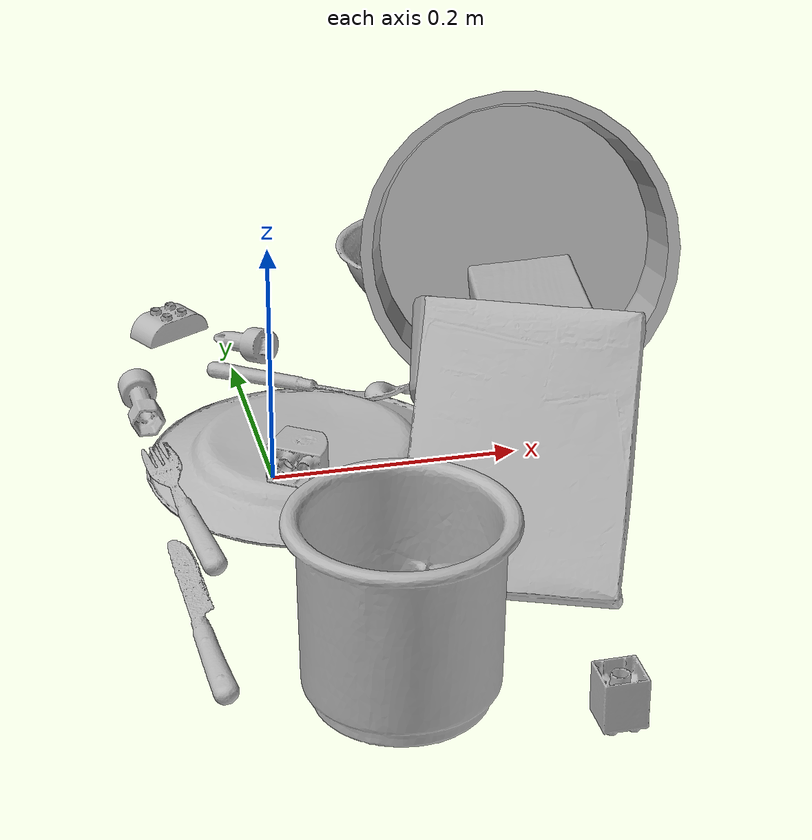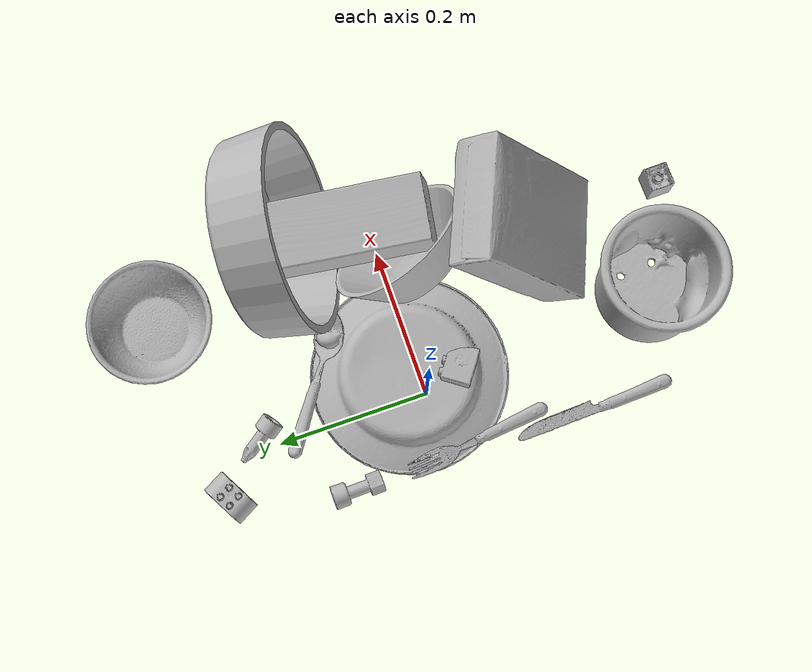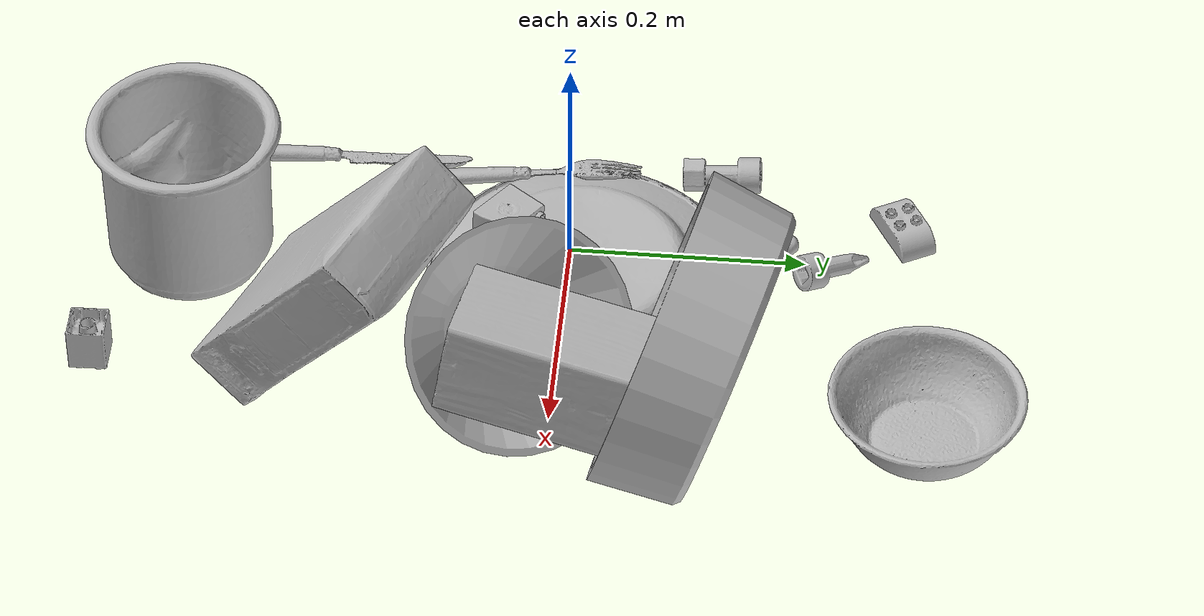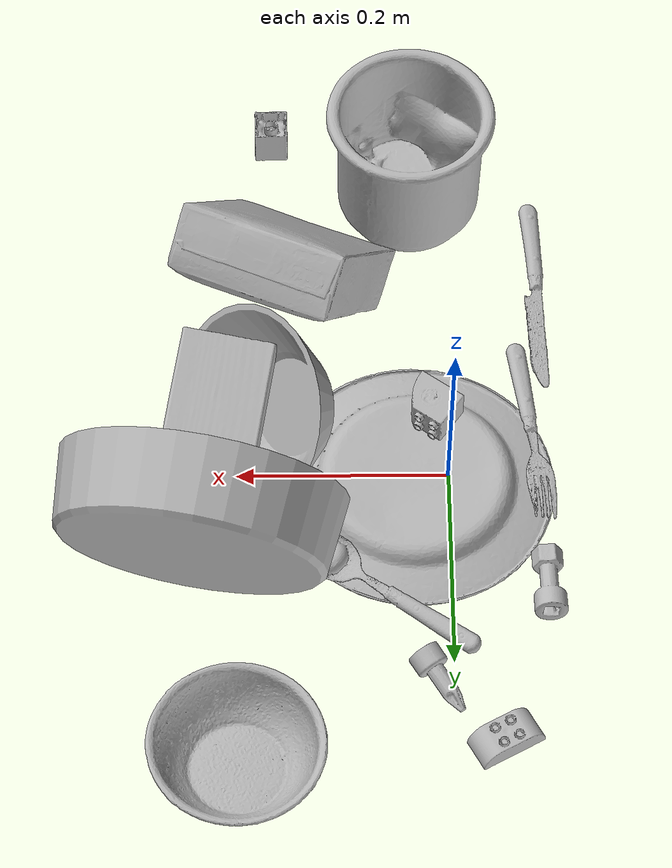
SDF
<sdf version="1.4">
  <world name="default">
    <light name="light1" type="point">
      <pose>0 0 1 0 0 0</pose>
      <diffuse>3 3 3 1</diffuse>
      <specular>3 3 3 1</specular>
    </light>
    <light name="light2" type="point">
      <pose>0 0.5 2 0 0 0</pose>
      <diffuse>1 1 1 1</diffuse>
      <specular>1 1 1 1</specular>
    </light>
    <light name="light3" type="point">
      <pose>0 0.5 2 0 0 0</pose>
      <diffuse>3 3 3 1</diffuse>
      <specular>3 3 3 1</specular>
    </light>
    <scene>
      <ambient>0.7 0.7 0.7</ambient>
    </scene>
    <model name="plate1">
      <link name="link_plate1">
        <collision name="default">
          <geometry>
            <mesh>
              <uri>model://pan_tefal/collision_meshes/collision.obj</uri>
              <scale>1.0 1.0 1.0</scale>
            </mesh>
          </geometry>
          <surface>
            <friction>
              <ode>
                <mu>0.5</mu>
                <mu2>0.5</mu2>
              </ode>
            </friction>
          <contact>
        <ode>
            <max_vel>0</max_vel>
            <min_depth>0.0001</min_depth>
            <kp>1e8</kp>
        </ode>
    </contact></surface>
        </collision>
        <visual name="default">
          <geometry>
            <mesh>
              <uri>model://pan_tefal/visual_meshes/visual.dae</uri>
              <scale>1.0 1.0 1.0</scale>
            </mesh>
          </geometry>
        </visual>
        <inertial>
          <mass>1.083925485610962</mass>
          <pose>-0.00018002053548116237 3.279013617429882e-05 -0.00851493701338768 0.000819031166138591 -0.00033013701589440335 -0.33186472787035126</pose>
          <inertia>
            <ixx>0.0074822875</ixx>
            <iyy>0.0075305253</iyy>
            <izz>0.013773448</izz>
            <ixy>0</ixy>
            <ixz>0</ixz>
            <iyz>0</iyz>
          </inertia>
        </inertial>
      </link>
      <pose>0.2322949469089508 0.1187891736626625 0.12957628071308136 -1.23696954542372 0.6078637263669974 -3.139473248738954</pose>
    </model>
    <model name="plate2">
      <link name="link_plate2">
        <collision name="default">
          <geometry>
            <mesh>
              <uri>model://plate/collision_meshes/collision.obj</uri>
              <scale>1.0 1.0 1.0</scale>
            </mesh>
          </geometry>
          <surface>
            <friction>
              <ode>
                <mu>0.5</mu>
                <mu2>0.5</mu2>
              </ode>
            </friction>
          <contact>
        <ode>
            <max_vel>0</max_vel>
            <min_depth>0.0001</min_depth>
            <kp>1e8</kp>
        </ode>
    </contact></surface>
        </collision>
        <visual name="default">
          <geometry>
            <mesh>
              <uri>model://plate/visual_meshes/visual.dae</uri>
              <scale>1.0 1.0 1.0</scale>
            </mesh>
          </geometry>
        </visual>
        <inertial>
          <mass>0.26740342378616333</mass>
          <pose>-0.00060446304269135 0.00027825793949887156 -0.0010561994276940823 0.0022187903743134635 -0.0032254779444460427 0.4526079808055429</pose>
          <inertia>
            <ixx>0.0012509191</ixx>
            <iyy>0.0012389544</iyy>
            <izz>0.00244661</izz>
            <ixy>0</ixy>
            <ixz>0</ixz>
            <iyz>0</iyz>
          </inertia>
        </inertial>
      </link>
      <pose>0.030822433531284332 0.012143217027187347 0.01344840507954359 3.141425031781777 -0.0031621820436168184 0.725973388261511</pose>
    </model>
    <model name="bowl1">
      <link name="link_bowl1">
        <collision name="default">
          <geometry>
            <mesh>
              <uri>model://bowl/collision_meshes/collision.obj</uri>
              <scale>1.0 1.0 1.0</scale>
            </mesh>
          </geometry>
          <surface>
            <friction>
              <ode>
                <mu>0.5</mu>
                <mu2>0.5</mu2>
              </ode>
            </friction>
          <contact>
        <ode>
            <max_vel>0</max_vel>
            <min_depth>0.0001</min_depth>
            <kp>1e8</kp>
        </ode>
    </contact></surface>
        </collision>
        <visual name="default">
          <geometry>
            <mesh>
              <uri>model://bowl/visual_meshes/visual.dae</uri>
              <scale>1.0 1.0 1.0</scale>
            </mesh>
          </geometry>
        </visual>
        <inertial>
          <mass>0.062040042132139206</mass>
          <pose>0.00020445157133508474 -0.001030211104080081 -0.0008042659028433263 -0.01576411046463803 0.014546752923574583 0.7140383763158871</pose>
          <inertia>
            <ixx>0.00014251085</ixx>
            <iyy>0.0001393266</iyy>
            <izz>0.00023975229</izz>
            <ixy>0</ixy>
            <ixz>0</ixz>
            <iyz>0</iyz>
          </inertia>
        </inertial>
      </link>
      <pose>0.19768646359443665 0.30704644322395325 0.027779988944530487 2.258925325987635e-08 8.398931117371314e-08 1.6301861217307727</pose>
    </model>
    <model name="bowl2">
      <link name="link_bowl2">
        <collision name="default">
          <geometry>
            <mesh>
              <uri>model://bowl_a/collision_meshes/collision.obj</uri>
              <scale>1.0 1.0 1.0</scale>
            </mesh>
          </geometry>
          <surface>
            <friction>
              <ode>
                <mu>0.5</mu>
                <mu2>0.5</mu2>
              </ode>
            </friction>
          <contact>
        <ode>
            <max_vel>0</max_vel>
            <min_depth>0.0001</min_depth>
            <kp>1e8</kp>
        </ode>
    </contact></surface>
        </collision>
        <visual name="default">
          <geometry>
            <mesh>
              <uri>model://bowl_a/visual_meshes/visual.dae</uri>
              <scale>1.0 1.0 1.0</scale>
            </mesh>
          </geometry>
        </visual>
        <inertial>
          <mass>0.2882154881954193</mass>
          <pose>0.00027867534663528204 4.731079752673395e-05 -0.0013765293406322598 -0.0009805311525578244 -0.0010938248781945461 -0.19124031319294812</pose>
          <inertia>
            <ixx>0.00082056265</ixx>
            <iyy>0.0008256004</iyy>
            <izz>0.001459402</izz>
            <ixy>0</ixy>
            <ixz>0</ixz>
            <iyz>0</iyz>
          </inertia>
        </inertial>
      </link>
      <pose>0.16743582487106323 -0.03563052415847778 0.0640280693769455 0.8357213263087742 0.539373937540757 1.6397469941987874</pose>
    </model>
    <model name="silverware1">
      <link name="link_silverware1">
        <collision name="default">
          <geometry>
            <mesh>
              <uri>model://fork/collision_meshes/collision.obj</uri>
              <scale>1.0 1.0 1.0</scale>
            </mesh>
          </geometry>
          <surface>
            <friction>
              <ode>
                <mu>0.5</mu>
                <mu2>0.5</mu2>
              </ode>
            </friction>
          <contact>
        <ode>
            <max_vel>0</max_vel>
            <min_depth>0.0001</min_depth>
            <kp>1e8</kp>
        </ode>
    </contact></surface>
        </collision>
        <visual name="default">
          <geometry>
            <mesh>
              <uri>model://fork/visual_meshes/visual.dae</uri>
              <scale>1.0 1.0 1.0</scale>
            </mesh>
          </geometry>
        </visual>
        <inertial>
          <mass>0.01398836076259613</mass>
          <pose>-0.02957003563642502 0.00046588244731538 0.0003218861238565296 -0.013550934691899108 -0.010977833142804767 0.01445389655901604</pose>
          <inertia>
            <ixx>4.903713e-07</ixx>
            <iyy>3.6519592e-05</iyy>
            <izz>3.673893e-05</izz>
            <ixy>0</ixy>
            <ixz>0</ixz>
            <iyz>0</iyz>
          </inertia>
        </inertial>
      </link>
      <pose>-0.07945322245359421 -0.043825943022966385 0.012145007029175758 2.9365263584596417 -0.04938300205900081 1.6937138924031074</pose>
    </model>
    <model name="box1">
      <link name="link_box1">
        <collision name="default">
          <geometry>
            <mesh>
              <uri>model://cracker_box/collision_meshes/collision.obj</uri>
              <scale>1.0 1.0 1.0</scale>
            </mesh>
          </geometry>
          <surface>
            <friction>
              <ode>
                <mu>0.5</mu>
                <mu2>0.5</mu2>
              </ode>
            </friction>
          <contact>
        <ode>
            <max_vel>0</max_vel>
            <min_depth>0.0001</min_depth>
            <kp>1e8</kp>
        </ode>
    </contact></surface>
        </collision>
        <visual name="default">
          <geometry>
            <mesh>
              <uri>model://cracker_box/visual_meshes/visual.dae</uri>
              <scale>1.0 1.0 1.0</scale>
            </mesh>
          </geometry>
        </visual>
        <inertial>
          <mass>3.3038947582244873</mass>
          <pose>0.0009464139584451914 0.00025434247800149024 -0.0017029535956680775 -0.00031620753779881404 -0.011106489600569465 0.002546794535826719</pose>
          <inertia>
            <ixx>0.008403633</ixx>
            <iyy>0.013876048</iyy>
            <izz>0.019802397</izz>
            <ixy>0</ixy>
            <ixz>0</ixz>
            <iyz>0</iyz>
          </inertia>
        </inertial>
      </link>
      <pose>0.15444542467594147 -0.1788904219865799 0.100165456533432 3.137033452916069 -0.8932965571293963 1.1737527649107689</pose>
    </model>
    <model name="box2">
      <link name="link_box2">
        <collision name="default">
          <geometry>
            <mesh>
              <uri>model://wood_block/collision_meshes/collision.obj</uri>
              <scale>1.0 1.0 1.0</scale>
            </mesh>
          </geometry>
          <surface>
            <friction>
              <ode>
                <mu>0.5</mu>
                <mu2>0.5</mu2>
              </ode>
            </friction>
          <contact>
        <ode>
            <max_vel>0</max_vel>
            <min_depth>0.0001</min_depth>
            <kp>1e8</kp>
        </ode>
    </contact></surface>
        </collision>
        <visual name="default">
          <geometry>
            <mesh>
              <uri>model://wood_block/visual_meshes/visual.dae</uri>
              <scale>1.0 1.0 1.0</scale>
            </mesh>
          </geometry>
        </visual>
        <inertial>
          <mass>1.8317598104476929</mass>
          <pose>-5.813315510749817e-06 -0.000570809468626976 0.0002640858292579651 -0.05220774405774941 -0.005192695034541599 -0.006861378043904631</pose>
          <inertia>
            <ixx>0.0024511719</ixx>
            <iyy>0.0077432534</iyy>
            <izz>0.007714289</izz>
            <ixy>0</ixy>
            <ixz>0</ixz>
            <iyz>0</iyz>
          </inertia>
        </inertial>
      </link>
      <pose>0.2238844782114029 0.024071713909506798 0.08141973614692688 1.6805202774381354 -0.14402955412125235 -1.7387145512378002</pose>
    </model>
    <model name="cup1">
      <link name="link_cup1">
        <collision name="default">
          <geometry>
            <mesh>
              <uri>model://f_cups/collision_meshes/collision.obj</uri>
              <scale>2.0 2.0 2.0</scale>
            </mesh>
          </geometry>
          <surface>
            <friction>
              <ode>
                <mu>0.5</mu>
                <mu2>0.5</mu2>
              </ode>
            </friction>
          <contact>
        <ode>
            <max_vel>0</max_vel>
            <min_depth>0.0001</min_depth>
            <kp>1e8</kp>
        </ode>
    </contact></surface>
        </collision>
        <visual name="default">
          <geometry>
            <mesh>
              <uri>model://f_cups/visual_meshes/visual.dae</uri>
              <scale>2.0 2.0 2.0</scale>
            </mesh>
          </geometry>
        </visual>
        <inertial>
          <mass>0.8281989693641663</mass>
          <pose>-0.006342937704175711 -0.0012480166042223573 -0.007311076857149601 0.7862278170542254 -0.2607923358756499 -0.18237381375543787</pose>
          <inertia>
            <ixx>0.003114117</ixx>
            <iyy>0.0032667436</iyy>
            <izz>0.0034007723</izz>
            <ixy>0</ixy>
            <ixz>0</ixz>
            <iyz>0</iyz>
          </inertia>
        </inertial>
      </link>
      <pose>0.0312851183116436 -0.31848034262657166 0.0726119875907898 1.997650233569405e-07 -7.871547652192143e-09 1.0060625723878303</pose>
    </model>
    <model name="silverware2">
      <link name="link_silverware2">
        <collision name="default">
          <geometry>
            <mesh>
              <uri>model://knife/collision_meshes/collision.obj</uri>
              <scale>1.0 1.0 1.0</scale>
            </mesh>
          </geometry>
          <surface>
            <friction>
              <ode>
                <mu>0.5</mu>
                <mu2>0.5</mu2>
              </ode>
            </friction>
          <contact>
        <ode>
            <max_vel>0</max_vel>
            <min_depth>0.0001</min_depth>
            <kp>1e8</kp>
        </ode>
    </contact></surface>
        </collision>
        <visual name="default">
          <geometry>
            <mesh>
              <uri>model://knife/visual_meshes/visual.dae</uri>
              <scale>1.0 1.0 1.0</scale>
            </mesh>
          </geometry>
        </visual>
        <inertial>
          <mass>0.033610157668590546</mass>
          <pose>-0.02378525771200657 0.0015275131445378065 5.0620201363926753e-05 0.07305356746503441 0.01724842347870745 -0.0074098216508425</pose>
          <inertia>
            <ixx>9.539925e-07</ixx>
            <iyy>0.00012912478</iyy>
            <izz>0.00012943202</izz>
            <ixy>0</ixy>
            <ixz>0</ixz>
            <iyz>0</iyz>
          </inertia>
        </inertial>
      </link>
      <pose>-0.08890844136476517 -0.1998830884695053 0.008136809803545475 -0.28174908185216496 -0.008871659889924043 1.5993717907994454</pose>
    </model>
    <model name="silverware3">
      <link name="link_silverware3">
        <collision name="default">
          <geometry>
            <mesh>
              <uri>model://spoon/collision_meshes/collision.obj</uri>
              <scale>1.0 1.0 1.0</scale>
            </mesh>
          </geometry>
          <surface>
            <friction>
              <ode>
                <mu>0.5</mu>
                <mu2>0.5</mu2>
              </ode>
            </friction>
          <contact>
        <ode>
            <max_vel>0</max_vel>
            <min_depth>0.0001</min_depth>
            <kp>1e8</kp>
        </ode>
    </contact></surface>
        </collision>
        <visual name="default">
          <geometry>
            <mesh>
              <uri>model://spoon/visual_meshes/visual.dae</uri>
              <scale>1.0 1.0 1.0</scale>
            </mesh>
          </geometry>
        </visual>
        <inertial>
          <mass>0.03036251850426197</mass>
          <pose>-0.005526314955204725 -0.0016034168656915426 -0.0007271655485965312 0.035217258575681115 -0.03906584346489495 0.006150616147242728</pose>
          <inertia>
            <ixx>1.6888126e-06</ixx>
            <iyy>0.00011552838</iyy>
            <izz>0.00011636122</izz>
            <ixy>0</ixy>
            <ixz>0</ixz>
            <iyz>0</iyz>
          </inertia>
        </inertial>
      </link>
      <pose>0.059377193450927734 0.1343446522951126 0.011921378783881664 -0.27930651082768443 -0.029495173032997594 -0.6206036451144166</pose>
    </model>
    <model name="toy1">
      <link name="link_toy1">
        <collision name="default">
          <geometry>
            <mesh>
              <uri>model://d_lego_duplo/collision_meshes/collision.obj</uri>
              <scale>1.0 1.0 1.0</scale>
            </mesh>
          </geometry>
          <surface>
            <friction>
              <ode>
                <mu>0.5</mu>
                <mu2>0.5</mu2>
              </ode>
            </friction>
          <contact>
        <ode>
            <max_vel>0</max_vel>
            <min_depth>0.0001</min_depth>
            <kp>1e8</kp>
        </ode>
    </contact></surface>
        </collision>
        <visual name="default">
          <geometry>
            <mesh>
              <uri>model://d_lego_duplo/visual_meshes/visual.dae</uri>
              <scale>1.0 1.0 1.0</scale>
            </mesh>
          </geometry>
        </visual>
        <inertial>
          <mass>0.05888136848807335</mass>
          <pose>0.00283056334592402 0.00016366125782951713 0.0008589810458943248 0.0801088994423302 -0.3835518637869403 0.0010296847698221781</pose>
          <inertia>
            <ixx>1.1398561e-05</ixx>
            <iyy>1.6177655e-05</iyy>
            <izz>1.5601077e-05</izz>
            <ixy>0</ixy>
            <ixz>0</ixz>
            <iyz>0</iyz>
          </inertia>
        </inertial>
      </link>
      <pose>0.016955990344285965 -0.04889219254255295 0.04290449619293213 1.6120971842381904 0.021497103125269486 2.516157943598662</pose>
    </model>
    <model name="toy2">
      <link name="link_toy2">
        <collision name="default">
          <geometry>
            <mesh>
              <uri>model://d_toy_airplane/collision_meshes/collision.obj</uri>
              <scale>1.0 1.0 1.0</scale>
            </mesh>
          </geometry>
          <surface>
            <friction>
              <ode>
                <mu>0.5</mu>
                <mu2>0.5</mu2>
              </ode>
            </friction>
          <contact>
        <ode>
            <max_vel>0</max_vel>
            <min_depth>0.0001</min_depth>
            <kp>1e8</kp>
        </ode>
    </contact></surface>
        </collision>
        <visual name="default">
          <geometry>
            <mesh>
              <uri>model://d_toy_airplane/visual_meshes/visual.dae</uri>
              <scale>1.0 1.0 1.0</scale>
            </mesh>
          </geometry>
        </visual>
        <inertial>
          <mass>0.019283337518572807</mass>
          <pose>9.410297934664413e-05 -5.809335198136978e-05 -0.011728096753358841 0.00026677547083937895 0.00467899750463603 0.5194224971352938</pose>
          <inertia>
            <ixx>5.7807692e-06</ixx>
            <iyy>5.78513e-06</iyy>
            <izz>1.7452522e-06</izz>
            <ixy>0</ixy>
            <ixz>0</ixz>
            <iyz>0</iyz>
          </inertia>
        </inertial>
      </link>
      <pose>0.01213016640394926 0.2250257432460785 0.011834933422505856 1.9162707440569264 0.9460488162148553 -2.2719901585910542</pose>
    </model>
    <model name="toy3">
      <link name="link_toy3">
        <collision name="default">
          <geometry>
            <mesh>
              <uri>model://b_lego_duplo/collision_meshes/collision.obj</uri>
              <scale>1.0 1.0 1.0</scale>
            </mesh>
          </geometry>
          <surface>
            <friction>
              <ode>
                <mu>0.5</mu>
                <mu2>0.5</mu2>
              </ode>
            </friction>
          <contact>
        <ode>
            <max_vel>0</max_vel>
            <min_depth>0.0001</min_depth>
            <kp>1e8</kp>
        </ode>
    </contact></surface>
        </collision>
        <visual name="default">
          <geometry>
            <mesh>
              <uri>model://b_lego_duplo/visual_meshes/visual.dae</uri>
              <scale>1.0 1.0 1.0</scale>
            </mesh>
          </geometry>
        </visual>
        <inertial>
          <mass>0.03460631147027016</mass>
          <pose>-0.00011053022171836346 -9.15238524612505e-06 0.0019294291269034147 -0.037494934713503944 -0.026353982766830427 0.45190023703794546</pose>
          <inertia>
            <ixx>7.082442e-06</ixx>
            <iyy>7.1300533e-06</iyy>
            <izz>6.310225e-06</izz>
            <ixy>0</ixy>
            <ixz>0</ixz>
            <iyz>0</iyz>
          </inertia>
        </inertial>
      </link>
      <pose>0.16589824855327606 -0.38353246450424194 0.021815095096826553 -3.1415045844769502 -9.900093329545258e-05 -3.130114627861221</pose>
    </model>
    <model name="toy4">
      <link name="link_toy4">
        <collision name="default">
          <geometry>
            <mesh>
              <uri>model://c_toy_airplane/collision_meshes/collision.obj</uri>
              <scale>1.0 1.0 1.0</scale>
            </mesh>
          </geometry>
          <surface>
            <friction>
              <ode>
                <mu>0.5</mu>
                <mu2>0.5</mu2>
              </ode>
            </friction>
          <contact>
        <ode>
            <max_vel>0</max_vel>
            <min_depth>0.0001</min_depth>
            <kp>1e8</kp>
        </ode>
    </contact></surface>
        </collision>
        <visual name="default">
          <geometry>
            <mesh>
              <uri>model://c_toy_airplane/visual_meshes/visual.dae</uri>
              <scale>1.0 1.0 1.0</scale>
            </mesh>
          </geometry>
        </visual>
        <inertial>
          <mass>0.03008922003209591</mass>
          <pose>-0.00023024248366709799 -4.429292062013701e-07 -0.006080532446503639 -0.006192764609865116 -0.016797726061543002 0.7654936540566961</pose>
          <inertia>
            <ixx>1.3816358e-05</ixx>
            <iyy>1.3777365e-05</iyy>
            <izz>3.2438072e-06</izz>
            <ixy>0</ixy>
            <ixz>0</ixz>
            <iyz>0</iyz>
          </inertia>
        </inertial>
      </link>
      <pose>-0.08887261152267456 0.12371121346950531 0.014860667288303375 -1.642293978052194 -0.8111692232922583 -3.072783868168054</pose>
    </model>
    <model name="toy5">
      <link name="link_toy5">
        <collision name="default">
          <geometry>
            <mesh>
              <uri>model://a_lego_duplo/collision_meshes/collision.obj</uri>
              <scale>1.0 1.0 1.0</scale>
            </mesh>
          </geometry>
          <surface>
            <friction>
              <ode>
                <mu>0.5</mu>
                <mu2>0.5</mu2>
              </ode>
            </friction>
          <contact>
        <ode>
            <max_vel>0</max_vel>
            <min_depth>0.0001</min_depth>
            <kp>1e8</kp>
        </ode>
    </contact></surface>
        </collision>
        <visual name="default">
          <geometry>
            <mesh>
              <uri>model://a_lego_duplo/visual_meshes/visual.dae</uri>
              <scale>1.0 1.0 1.0</scale>
            </mesh>
          </geometry>
        </visual>
        <inertial>
          <mass>0.02472195029258728</mass>
          <pose>-0.00011337580508552492 0.00018517558055464178 0.0003692609316203743 -0.014116968053030856 -0.00012565531185804749 6.140757465531037e-05</pose>
          <inertia>
            <ixx>3.1695524e-06</ixx>
            <iyy>7.100487e-06</iyy>
            <izz>8.795534e-06</izz>
            <ixy>0</ixy>
            <ixz>0</ixz>
            <iyz>0</iyz>
          </inertia>
        </inertial>
      </link>
      <pose>-0.043781474232673645 0.2806106507778168 0.012111999094486237 -4.144573157362904e-08 -7.678054756033915e-08 0.5036799308113323</pose>
    </model>
  <physics type="ode">
      <max_contacts>50</max_contacts>
      <ode>
        <solver>
          <type>quick</type>
          <iters>75</iters>
        </solver>
        <constraints>
          <contact_max_correcting_vel>0</contact_max_correcting_vel>
          <contact_surface_layer>0</contact_surface_layer>
        </constraints>
      </ode>
    </physics></world>
</sdf>
